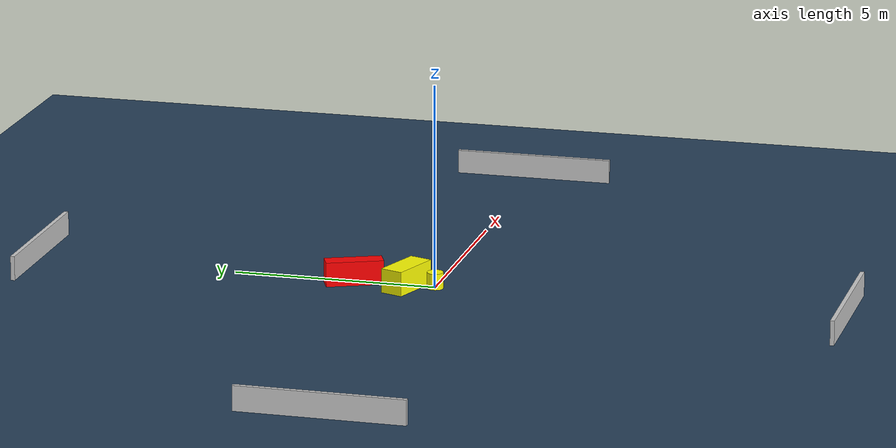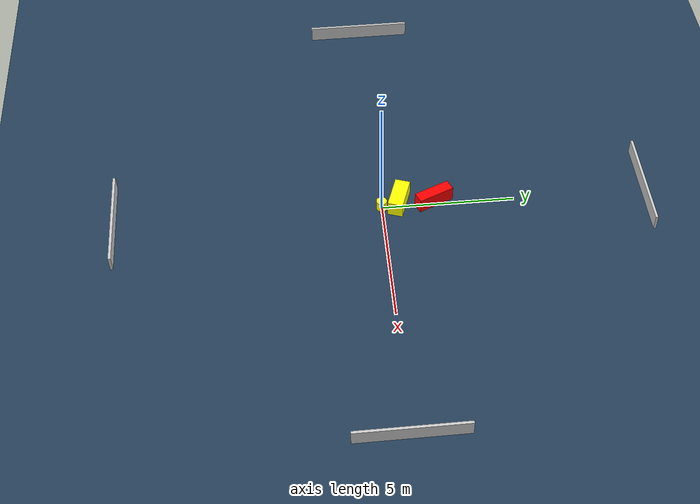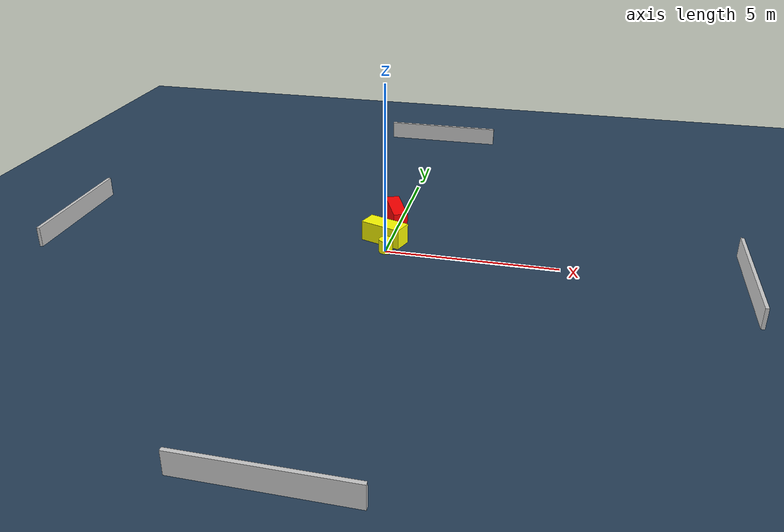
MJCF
<?xml version="1.0" ?>
<mujoco model="generated_environment">
  <option timestep="0.01" integrator="RK4" cone="elliptic"/>
  <default>
    <geom density="1"/>
  </default>
  <asset>
    <texture builtin="gradient" height="3072" name="skybox" rgb1="0.3 0.5 0.7" rgb2="0 0 0" type="skybox" width="512"/>
    <texture builtin="checker" height="300" name="groundplane" rgb1="0.2 0.3 0.4" rgb2="0.1 0.2 0.3" type="2d" width="300"/>
    <material name="groundplane" reflectance="0.2" texrepeat="5 5" texture="groundplane"/>
  </asset>
  <worldbody>
    <light dir="0 0 -1" directional="true" pos="0 0 1.5"/>
    <geom condim="3" friction="0.5 0.005 0.001" material="groundplane" name="floor" pos="0 0 0" size="0 0 0.05" type="plane"/>
    <body name="walls">
      <geom name="wall_1" condim="4" pos="-10.0 0.0 0.3" rgba="0.800000011920929 0.800000011920929 0.800000011920929 1.0" size="0.05 2.0 0.3" type="box"/>
      <geom name="wall_2" condim="4" pos="10.0 0.0 0.3" rgba="0.800000011920929 0.800000011920929 0.800000011920929 1.0" size="0.05 2.0 0.3" type="box"/>
      <geom name="wall_3" condim="4" pos="0.0 -10.0 0.3" rgba="0.800000011920929 0.800000011920929 0.800000011920929 1.0" size="2.0 0.05 0.3" type="box"/>
      <geom name="wall_4" condim="4" pos="0.0 10.0 0.3" rgba="0.800000011920929 0.800000011920929 0.800000011920929 1.0" size="2.0 0.05 0.3" type="box"/>
    </body>
    <body name="robot">
      <joint name="joint_x" type="slide" pos="0 0 0" axis="1 0 0"/>
      <joint name="joint_y" type="slide" pos="0 0 0" axis="0 1 0"/>
      <geom name="robot" type="cylinder" pos="0.0 0.0 0.2" size="0.2 0.2 0.0" mass="5.0" friction="1.0 0.005 0.0001" condim="4" rgba="1.0 1.0 0.0 1.0"/>
    </body>
    <body name="obstacle_1_movable">
      <geom name="obstacle_1_movable" condim="4" pos="-0.18322785852725007 0.6711649659130601 0.3" euler="0 0 70.80736747888244" friction="0.0 0.005 0.001" rgba="1.0 1.0 0.0 1.0" size="0.28499915371535317 0.6339131228807104 0.3" type="box" mass="0.1"/>
      <joint type="free"/>
    </body>
    <body name="obstacle_2_static">
      <geom name="obstacle_2_static" condim="4" pos="-0.12558263838025252 1.9875712190964572 0.3" euler="0 0 23.337323394202343" friction="0.0 0.005 0.001" rgba="1.0 0.0 0.0 1.0" size="0.21473381271196607 0.7010580724375788 0.3" type="box"/>
    </body>
  </worldbody>
  <actuator>
    <motor name="actuator_x" joint="joint_x" gear="1" ctrlrange="-1 1"/>
    <motor name="actuator_y" joint="joint_y" gear="1" ctrlrange="-1 1"/>
  </actuator>
</mujoco>
